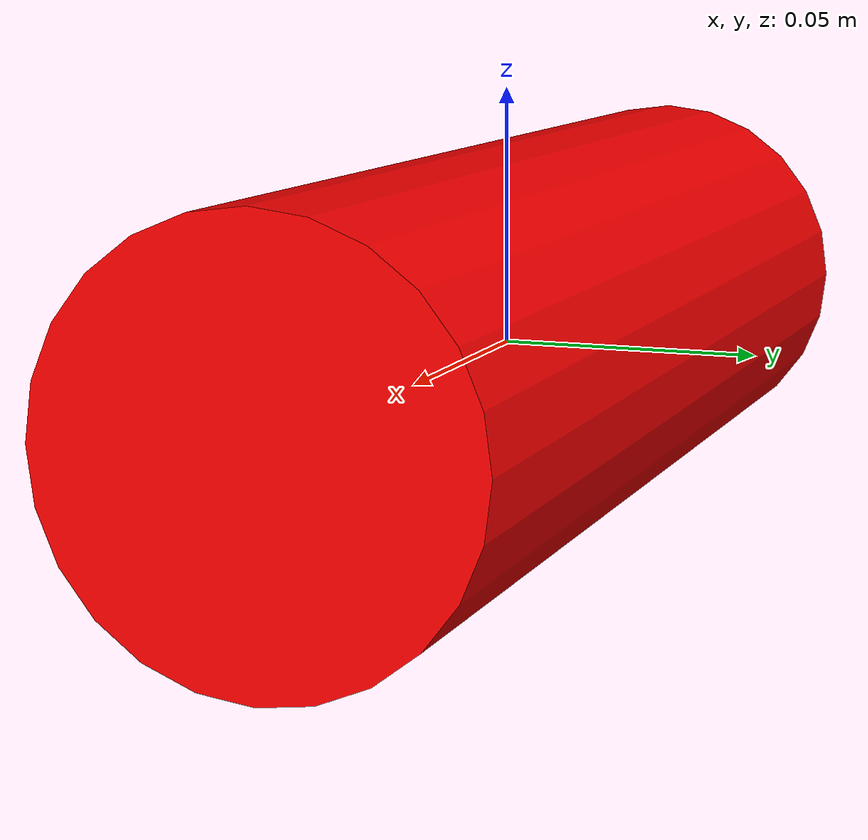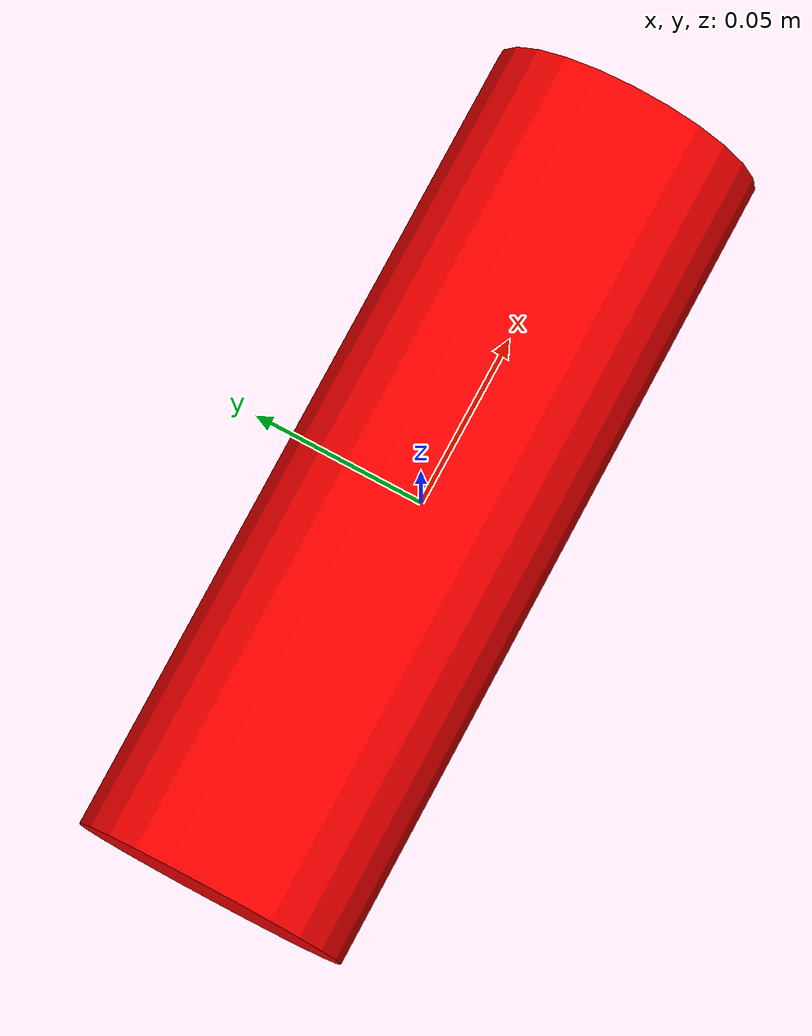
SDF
<?xml version='1.0'?>
<sdf version='1.7'>
  <model name='cylinder_object'>
    <link name='link'>
      <pose>0 0 0 0 1.57 0</pose>
      <inertial>
        <pose>0 0 -0.025 0 -0 0</pose>
        <mass>330</mass>
        <inertia>
          <ixx>0</ixx>
          <ixy>0</ixy>
          <ixz>0</ixz>
          <iyy>0</iyy>
          <iyz>0</iyz>
          <izz>0</izz>
        </inertia>
      </inertial>
      <self_collide>0</self_collide>
      <enable_wind>0</enable_wind>
      <kinematic>0</kinematic>
      <visual name='visual'>
        <geometry>
          <cylinder>
            <radius>0.039</radius>
            <length>0.235</length>
          </cylinder>
        </geometry>
        <material>
          <ambient>1 0 0 1</ambient>
          <diffuse>1 0 0 1</diffuse>
          <specular>0.1 0.1 0.1 1</specular>
          <emissive>0 0 0 0</emissive>
        </material>
        <pose>0 0 0 0 -0 0</pose>
        <transparency>0</transparency>
        <cast_shadows>1</cast_shadows>
      </visual>
      <collision name='collision'>
        <laser_retro>0</laser_retro>
        <max_contacts>10</max_contacts>
        <pose>0 0 0 0 -0 0</pose>
        <geometry>
          <cylinder>
            <radius>0.039</radius>
            <length>0.235</length>
          </cylinder>
        </geometry>
        <surface>
          <friction>
            <ode>
              <mu>0.2</mu>
              <mu2>0.2</mu2>
              <fdir1>0 0 0</fdir1>
              <slip1>0</slip1>
              <slip2>0</slip2>
            </ode>
            <torsional>
              <coefficient>1</coefficient>
              <patch_radius>0</patch_radius>
              <surface_radius>0</surface_radius>
              <use_patch_radius>1</use_patch_radius>
              <ode>
                <slip>0</slip>
              </ode>
            </torsional>
          </friction>
          <bounce>
            <restitution_coefficient>0</restitution_coefficient>
            <threshold>1e+06</threshold>
          </bounce>
          <contact>
            <collide_without_contact>0</collide_without_contact>
            <collide_without_contact_bitmask>1</collide_without_contact_bitmask>
            <collide_bitmask>1</collide_bitmask>
            <ode>
              <soft_cfm>0</soft_cfm>
              <soft_erp>0.2</soft_erp>
              <kp>1e+13</kp>
              <kd>1</kd>
              <max_vel>0.01</max_vel>
              <min_depth>0</min_depth>
            </ode>
            <bullet>
              <split_impulse>1</split_impulse>
              <split_impulse_penetration_threshold>-0.01</split_impulse_penetration_threshold>
              <soft_cfm>0</soft_cfm>
              <soft_erp>0.2</soft_erp>
              <kp>1e+13</kp>
              <kd>1</kd>
            </bullet>
          </contact>
        </surface>
      </collision>
    </link>
    <static>0</static>
    <allow_auto_disable>1</allow_auto_disable>
  </model>
</sdf>
